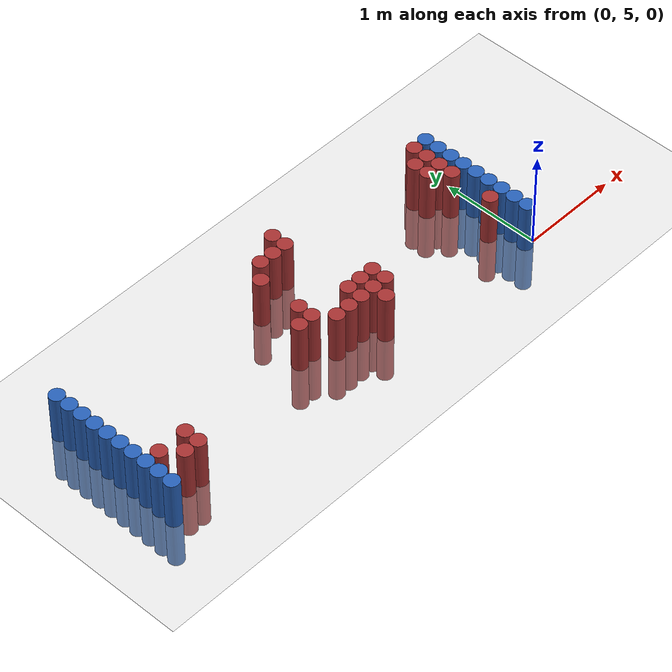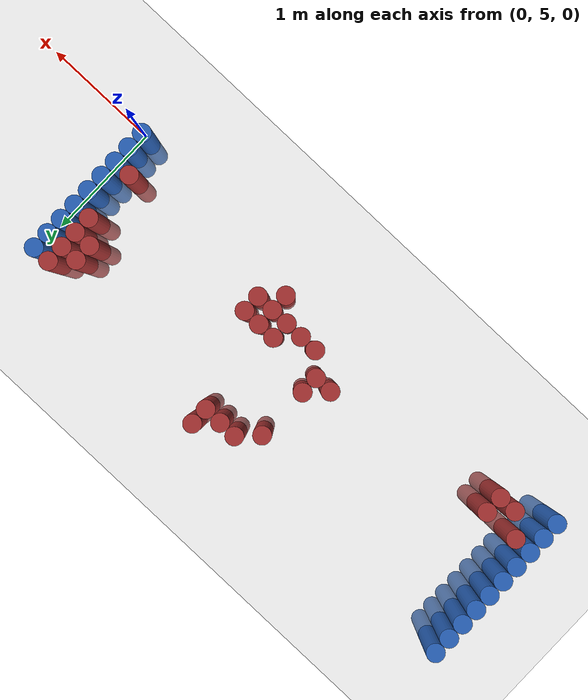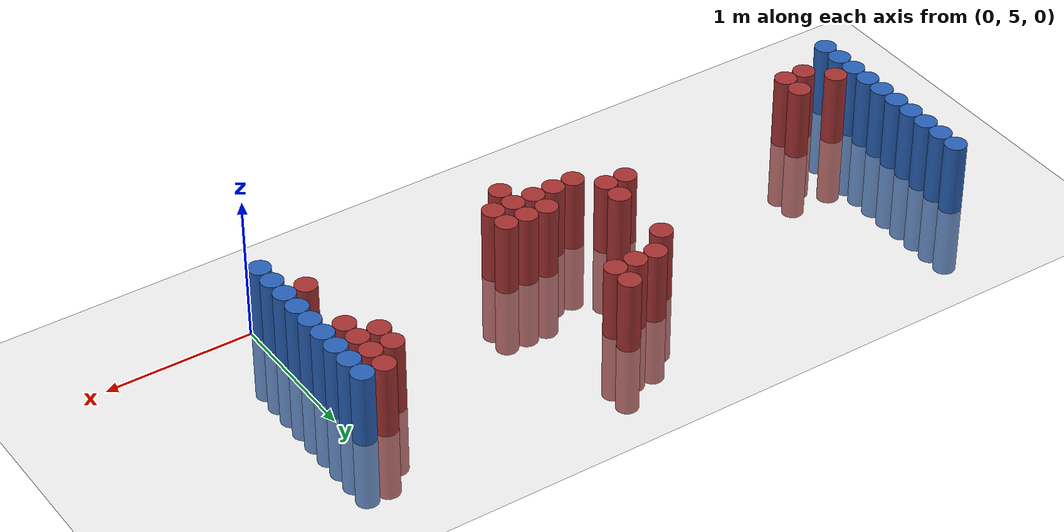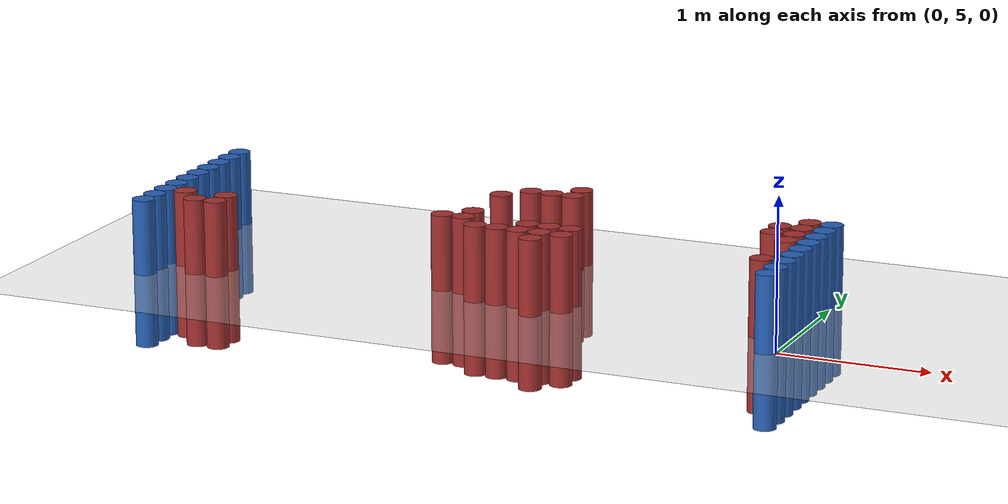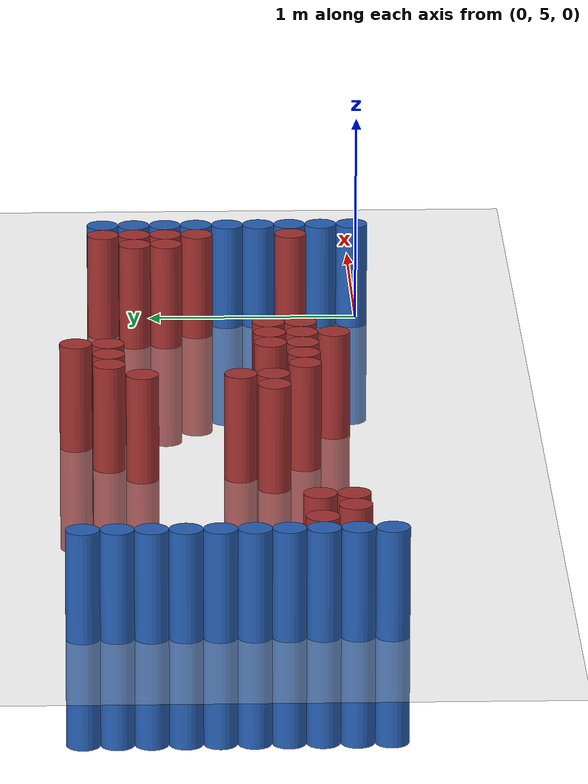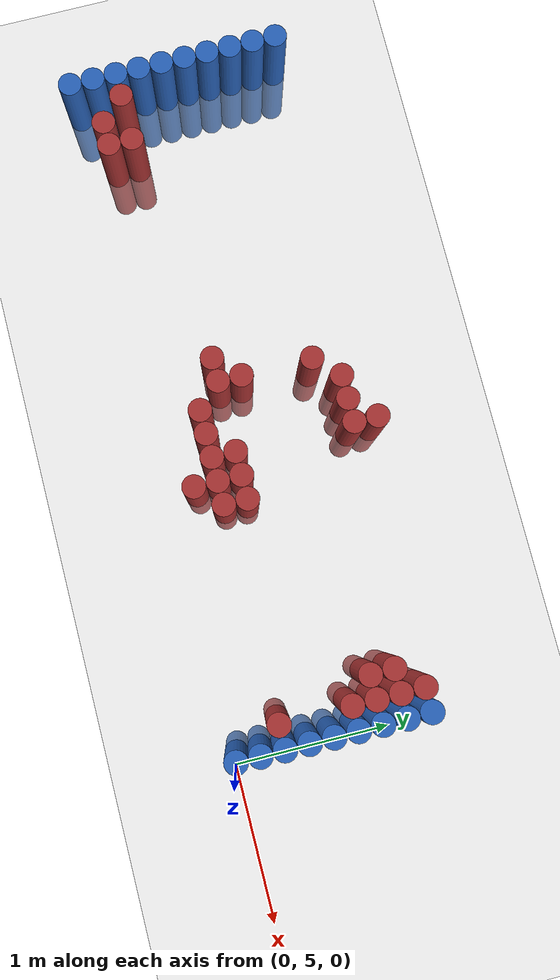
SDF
<sdf version="1.6">
 <world name="default">
  <model name="ground_plane">
   <static>1</static>
   <link name="link">
    <collision name="collision">
     <geometry><plane><normal>0 0 1</normal><size>100 100</size></plane></geometry>
     <surface><friction><ode><mu>100</mu><mu2>50</mu2></ode></friction></surface>
    </collision>
    <visual name="visual">
     <cast_shadows>0</cast_shadows>
     <geometry><plane><normal>0 0 1</normal><size>100 100</size></plane></geometry>
     <material>
      <script><uri>file://media/materials/scripts/gazebo.material</uri><name>Gazebo/Grey</name></script>
     </material>
    </visual>
   </link>
  </model>
  <model name="unit_cylinder_94">
   <static>1</static>
   <pose>-0.075000 5.025000 0.000000 0.000000 0.000000 0.000000</pose>
   <link name="link">
    <inertial>
     <mass>1</mass>
     <inertia><ixx>0.145833</ixx><ixy>0</ixy><ixz>0</ixz><iyy>0.145833</iyy><iyz>0</iyz><izz>0.125</izz></inertia>
    </inertial>
    <collision name="collision">
     <geometry><cylinder><radius>0.075000</radius><length>1</length></cylinder></geometry>
    </collision>
    <visual name="visual">
     <geometry><cylinder><radius>0.075000</radius><length>1</length></cylinder></geometry>
     <material>
      <ambient>0.152000 0.379000 0.720000 1</ambient>
      <diffuse>0.152000 0.379000 0.720000 1</diffuse>
     </material>
     <material>
      <script><name>Gazebo/Grey</name><uri>file://media/materials/scripts/gazebo.material</uri></script>
     </material>
    </visual>
   </link>
  </model>
  <model name="unit_cylinder_95">
   <static>1</static>
   <pose>-4.425000 5.025000 0.000000 0.000000 0.000000 0.000000</pose>
   <link name="link">
    <inertial>
     <mass>1</mass>
     <inertia><ixx>0.145833</ixx><ixy>0</ixy><ixz>0</ixz><iyy>0.145833</iyy><iyz>0</iyz><izz>0.125</izz></inertia>
    </inertial>
    <collision name="collision">
     <geometry><cylinder><radius>0.075000</radius><length>1</length></cylinder></geometry>
    </collision>
    <visual name="visual">
     <geometry><cylinder><radius>0.075000</radius><length>1</length></cylinder></geometry>
     <material>
      <ambient>0.152000 0.379000 0.720000 1</ambient>
      <diffuse>0.152000 0.379000 0.720000 1</diffuse>
     </material>
     <material>
      <script><name>Gazebo/Grey</name><uri>file://media/materials/scripts/gazebo.material</uri></script>
     </material>
    </visual>
   </link>
  </model>
  <model name="unit_cylinder_96">
   <static>1</static>
   <pose>-4.425000 5.175000 0.000000 0.000000 0.000000 0.000000</pose>
   <link name="link">
    <inertial>
     <mass>1</mass>
     <inertia><ixx>0.145833</ixx><ixy>0</ixy><ixz>0</ixz><iyy>0.145833</iyy><iyz>0</iyz><izz>0.125</izz></inertia>
    </inertial>
    <collision name="collision">
     <geometry><cylinder><radius>0.075000</radius><length>1</length></cylinder></geometry>
    </collision>
    <visual name="visual">
     <geometry><cylinder><radius>0.075000</radius><length>1</length></cylinder></geometry>
     <material>
      <ambient>0.152000 0.379000 0.720000 1</ambient>
      <diffuse>0.152000 0.379000 0.720000 1</diffuse>
     </material>
     <material>
      <script><name>Gazebo/Grey</name><uri>file://media/materials/scripts/gazebo.material</uri></script>
     </material>
    </visual>
   </link>
  </model>
  <model name="unit_cylinder_97">
   <static>1</static>
   <pose>-4.425000 5.325000 0.000000 0.000000 0.000000 0.000000</pose>
   <link name="link">
    <inertial>
     <mass>1</mass>
     <inertia><ixx>0.145833</ixx><ixy>0</ixy><ixz>0</ixz><iyy>0.145833</iyy><iyz>0</iyz><izz>0.125</izz></inertia>
    </inertial>
    <collision name="collision">
     <geometry><cylinder><radius>0.075000</radius><length>1</length></cylinder></geometry>
    </collision>
    <visual name="visual">
     <geometry><cylinder><radius>0.075000</radius><length>1</length></cylinder></geometry>
     <material>
      <ambient>0.152000 0.379000 0.720000 1</ambient>
      <diffuse>0.152000 0.379000 0.720000 1</diffuse>
     </material>
     <material>
      <script><name>Gazebo/Grey</name><uri>file://media/materials/scripts/gazebo.material</uri></script>
     </material>
    </visual>
   </link>
  </model>
  <model name="unit_cylinder_98">
   <static>1</static>
   <pose>-4.425000 5.475000 0.000000 0.000000 0.000000 0.000000</pose>
   <link name="link">
    <inertial>
     <mass>1</mass>
     <inertia><ixx>0.145833</ixx><ixy>0</ixy><ixz>0</ixz><iyy>0.145833</iyy><iyz>0</iyz><izz>0.125</izz></inertia>
    </inertial>
    <collision name="collision">
     <geometry><cylinder><radius>0.075000</radius><length>1</length></cylinder></geometry>
    </collision>
    <visual name="visual">
     <geometry><cylinder><radius>0.075000</radius><length>1</length></cylinder></geometry>
     <material>
      <ambient>0.152000 0.379000 0.720000 1</ambient>
      <diffuse>0.152000 0.379000 0.720000 1</diffuse>
     </material>
     <material>
      <script><name>Gazebo/Grey</name><uri>file://media/materials/scripts/gazebo.material</uri></script>
     </material>
    </visual>
   </link>
  </model>
  <model name="unit_cylinder_99">
   <static>1</static>
   <pose>-4.425000 5.625000 0.000000 0.000000 0.000000 0.000000</pose>
   <link name="link">
    <inertial>
     <mass>1</mass>
     <inertia><ixx>0.145833</ixx><ixy>0</ixy><ixz>0</ixz><iyy>0.145833</iyy><iyz>0</iyz><izz>0.125</izz></inertia>
    </inertial>
    <collision name="collision">
     <geometry><cylinder><radius>0.075000</radius><length>1</length></cylinder></geometry>
    </collision>
    <visual name="visual">
     <geometry><cylinder><radius>0.075000</radius><length>1</length></cylinder></geometry>
     <material>
      <ambient>0.152000 0.379000 0.720000 1</ambient>
      <diffuse>0.152000 0.379000 0.720000 1</diffuse>
     </material>
     <material>
      <script><name>Gazebo/Grey</name><uri>file://media/materials/scripts/gazebo.material</uri></script>
     </material>
    </visual>
   </link>
  </model>
  <model name="unit_cylinder_100">
   <static>1</static>
   <pose>-4.425000 5.775000 0.000000 0.000000 0.000000 0.000000</pose>
   <link name="link">
    <inertial>
     <mass>1</mass>
     <inertia><ixx>0.145833</ixx><ixy>0</ixy><ixz>0</ixz><iyy>0.145833</iyy><iyz>0</iyz><izz>0.125</izz></inertia>
    </inertial>
    <collision name="collision">
     <geometry><cylinder><radius>0.075000</radius><length>1</length></cylinder></geometry>
    </collision>
    <visual name="visual">
     <geometry><cylinder><radius>0.075000</radius><length>1</length></cylinder></geometry>
     <material>
      <ambient>0.152000 0.379000 0.720000 1</ambient>
      <diffuse>0.152000 0.379000 0.720000 1</diffuse>
     </material>
     <material>
      <script><name>Gazebo/Grey</name><uri>file://media/materials/scripts/gazebo.material</uri></script>
     </material>
    </visual>
   </link>
  </model>
  <model name="unit_cylinder_101">
   <static>1</static>
   <pose>-4.425000 5.925000 0.000000 0.000000 0.000000 0.000000</pose>
   <link name="link">
    <inertial>
     <mass>1</mass>
     <inertia><ixx>0.145833</ixx><ixy>0</ixy><ixz>0</ixz><iyy>0.145833</iyy><iyz>0</iyz><izz>0.125</izz></inertia>
    </inertial>
    <collision name="collision">
     <geometry><cylinder><radius>0.075000</radius><length>1</length></cylinder></geometry>
    </collision>
    <visual name="visual">
     <geometry><cylinder><radius>0.075000</radius><length>1</length></cylinder></geometry>
     <material>
      <ambient>0.152000 0.379000 0.720000 1</ambient>
      <diffuse>0.152000 0.379000 0.720000 1</diffuse>
     </material>
     <material>
      <script><name>Gazebo/Grey</name><uri>file://media/materials/scripts/gazebo.material</uri></script>
     </material>
    </visual>
   </link>
  </model>
  <model name="unit_cylinder_102">
   <static>1</static>
   <pose>-4.425000 6.075000 0.000000 0.000000 0.000000 0.000000</pose>
   <link name="link">
    <inertial>
     <mass>1</mass>
     <inertia><ixx>0.145833</ixx><ixy>0</ixy><ixz>0</ixz><iyy>0.145833</iyy><iyz>0</iyz><izz>0.125</izz></inertia>
    </inertial>
    <collision name="collision">
     <geometry><cylinder><radius>0.075000</radius><length>1</length></cylinder></geometry>
    </collision>
    <visual name="visual">
     <geometry><cylinder><radius>0.075000</radius><length>1</length></cylinder></geometry>
     <material>
      <ambient>0.152000 0.379000 0.720000 1</ambient>
      <diffuse>0.152000 0.379000 0.720000 1</diffuse>
     </material>
     <material>
      <script><name>Gazebo/Grey</name><uri>file://media/materials/scripts/gazebo.material</uri></script>
     </material>
    </visual>
   </link>
  </model>
  <model name="unit_cylinder_103">
   <static>1</static>
   <pose>-4.425000 6.225000 0.000000 0.000000 0.000000 0.000000</pose>
   <link name="link">
    <inertial>
     <mass>1</mass>
     <inertia><ixx>0.145833</ixx><ixy>0</ixy><ixz>0</ixz><iyy>0.145833</iyy><iyz>0</iyz><izz>0.125</izz></inertia>
    </inertial>
    <collision name="collision">
     <geometry><cylinder><radius>0.075000</radius><length>1</length></cylinder></geometry>
    </collision>
    <visual name="visual">
     <geometry><cylinder><radius>0.075000</radius><length>1</length></cylinder></geometry>
     <material>
      <ambient>0.152000 0.379000 0.720000 1</ambient>
      <diffuse>0.152000 0.379000 0.720000 1</diffuse>
     </material>
     <material>
      <script><name>Gazebo/Grey</name><uri>file://media/materials/scripts/gazebo.material</uri></script>
     </material>
    </visual>
   </link>
  </model>
  <model name="unit_cylinder_104">
   <static>1</static>
   <pose>-4.425000 6.375000 0.000000 0.000000 0.000000 0.000000</pose>
   <link name="link">
    <inertial>
     <mass>1</mass>
     <inertia><ixx>0.145833</ixx><ixy>0</ixy><ixz>0</ixz><iyy>0.145833</iyy><iyz>0</iyz><izz>0.125</izz></inertia>
    </inertial>
    <collision name="collision">
     <geometry><cylinder><radius>0.075000</radius><length>1</length></cylinder></geometry>
    </collision>
    <visual name="visual">
     <geometry><cylinder><radius>0.075000</radius><length>1</length></cylinder></geometry>
     <material>
      <ambient>0.152000 0.379000 0.720000 1</ambient>
      <diffuse>0.152000 0.379000 0.720000 1</diffuse>
     </material>
     <material>
      <script><name>Gazebo/Grey</name><uri>file://media/materials/scripts/gazebo.material</uri></script>
     </material>
    </visual>
   </link>
  </model>
  <model name="unit_cylinder_126">
   <static>1</static>
   <pose>-4.275000 5.325000 0.000000 0.000000 0.000000 0.000000</pose>
   <link name="link">
    <inertial>
     <mass>1</mass>
     <inertia><ixx>0.145833</ixx><ixy>0</ixy><ixz>0</ixz><iyy>0.145833</iyy><iyz>0</iyz><izz>0.125</izz></inertia>
    </inertial>
    <collision name="collision">
     <geometry><cylinder><radius>0.075000</radius><length>1</length></cylinder></geometry>
    </collision>
    <visual name="visual">
     <geometry><cylinder><radius>0.075000</radius><length>1</length></cylinder></geometry>
     <material>
      <ambient>0.648000 0.192000 0.192000 1</ambient>
      <diffuse>0.648000 0.192000 0.192000 1</diffuse>
     </material>
     <material>
      <script><name>Gazebo/Grey</name><uri>file://media/materials/scripts/gazebo.material</uri></script>
     </material>
    </visual>
   </link>
  </model>
  <model name="unit_cylinder_135">
   <static>1</static>
   <pose>-4.125000 5.175000 0.000000 0.000000 0.000000 0.000000</pose>
   <link name="link">
    <inertial>
     <mass>1</mass>
     <inertia><ixx>0.145833</ixx><ixy>0</ixy><ixz>0</ixz><iyy>0.145833</iyy><iyz>0</iyz><izz>0.125</izz></inertia>
    </inertial>
    <collision name="collision">
     <geometry><cylinder><radius>0.075000</radius><length>1</length></cylinder></geometry>
    </collision>
    <visual name="visual">
     <geometry><cylinder><radius>0.075000</radius><length>1</length></cylinder></geometry>
     <material>
      <ambient>0.648000 0.192000 0.192000 1</ambient>
      <diffuse>0.648000 0.192000 0.192000 1</diffuse>
     </material>
     <material>
      <script><name>Gazebo/Grey</name><uri>file://media/materials/scripts/gazebo.material</uri></script>
     </material>
    </visual>
   </link>
  </model>
  <model name="unit_cylinder_138">
   <static>1</static>
   <pose>-3.975000 5.175000 0.000000 0.000000 0.000000 0.000000</pose>
   <link name="link">
    <inertial>
     <mass>1</mass>
     <inertia><ixx>0.145833</ixx><ixy>0</ixy><ixz>0</ixz><iyy>0.145833</iyy><iyz>0</iyz><izz>0.125</izz></inertia>
    </inertial>
    <collision name="collision">
     <geometry><cylinder><radius>0.075000</radius><length>1</length></cylinder></geometry>
    </collision>
    <visual name="visual">
     <geometry><cylinder><radius>0.075000</radius><length>1</length></cylinder></geometry>
     <material>
      <ambient>0.648000 0.192000 0.192000 1</ambient>
      <diffuse>0.648000 0.192000 0.192000 1</diffuse>
     </material>
     <material>
      <script><name>Gazebo/Grey</name><uri>file://media/materials/scripts/gazebo.material</uri></script>
     </material>
    </visual>
   </link>
  </model>
  <model name="unit_cylinder_139">
   <static>1</static>
   <pose>-3.975000 5.325000 0.000000 0.000000 0.000000 0.000000</pose>
   <link name="link">
    <inertial>
     <mass>1</mass>
     <inertia><ixx>0.145833</ixx><ixy>0</ixy><ixz>0</ixz><iyy>0.145833</iyy><iyz>0</iyz><izz>0.125</izz></inertia>
    </inertial>
    <collision name="collision">
     <geometry><cylinder><radius>0.075000</radius><length>1</length></cylinder></geometry>
    </collision>
    <visual name="visual">
     <geometry><cylinder><radius>0.075000</radius><length>1</length></cylinder></geometry>
     <material>
      <ambient>0.648000 0.192000 0.192000 1</ambient>
      <diffuse>0.648000 0.192000 0.192000 1</diffuse>
     </material>
     <material>
      <script><name>Gazebo/Grey</name><uri>file://media/materials/scripts/gazebo.material</uri></script>
     </material>
    </visual>
   </link>
  </model>
  <model name="unit_cylinder_150">
   <static>1</static>
   <pose>-2.475000 5.475000 0.000000 0.000000 0.000000 0.000000</pose>
   <link name="link">
    <inertial>
     <mass>1</mass>
     <inertia><ixx>0.145833</ixx><ixy>0</ixy><ixz>0</ixz><iyy>0.145833</iyy><iyz>0</iyz><izz>0.125</izz></inertia>
    </inertial>
    <collision name="collision">
     <geometry><cylinder><radius>0.075000</radius><length>1</length></cylinder></geometry>
    </collision>
    <visual name="visual">
     <geometry><cylinder><radius>0.075000</radius><length>1</length></cylinder></geometry>
     <material>
      <ambient>0.648000 0.192000 0.192000 1</ambient>
      <diffuse>0.648000 0.192000 0.192000 1</diffuse>
     </material>
     <material>
      <script><name>Gazebo/Grey</name><uri>file://media/materials/scripts/gazebo.material</uri></script>
     </material>
    </visual>
   </link>
  </model>
  <model name="unit_cylinder_151">
   <static>1</static>
   <pose>-2.325000 5.475000 0.000000 0.000000 0.000000 0.000000</pose>
   <link name="link">
    <inertial>
     <mass>1</mass>
     <inertia><ixx>0.145833</ixx><ixy>0</ixy><ixz>0</ixz><iyy>0.145833</iyy><iyz>0</iyz><izz>0.125</izz></inertia>
    </inertial>
    <collision name="collision">
     <geometry><cylinder><radius>0.075000</radius><length>1</length></cylinder></geometry>
    </collision>
    <visual name="visual">
     <geometry><cylinder><radius>0.075000</radius><length>1</length></cylinder></geometry>
     <material>
      <ambient>0.648000 0.192000 0.192000 1</ambient>
      <diffuse>0.648000 0.192000 0.192000 1</diffuse>
     </material>
     <material>
      <script><name>Gazebo/Grey</name><uri>file://media/materials/scripts/gazebo.material</uri></script>
     </material>
    </visual>
   </link>
  </model>
  <model name="unit_cylinder_152">
   <static>1</static>
   <pose>-2.325000 5.625000 0.000000 0.000000 0.000000 0.000000</pose>
   <link name="link">
    <inertial>
     <mass>1</mass>
     <inertia><ixx>0.145833</ixx><ixy>0</ixy><ixz>0</ixz><iyy>0.145833</iyy><iyz>0</iyz><izz>0.125</izz></inertia>
    </inertial>
    <collision name="collision">
     <geometry><cylinder><radius>0.075000</radius><length>1</length></cylinder></geometry>
    </collision>
    <visual name="visual">
     <geometry><cylinder><radius>0.075000</radius><length>1</length></cylinder></geometry>
     <material>
      <ambient>0.648000 0.192000 0.192000 1</ambient>
      <diffuse>0.648000 0.192000 0.192000 1</diffuse>
     </material>
     <material>
      <script><name>Gazebo/Grey</name><uri>file://media/materials/scripts/gazebo.material</uri></script>
     </material>
    </visual>
   </link>
  </model>
  <model name="unit_cylinder_153">
   <static>1</static>
   <pose>-2.325000 6.075000 0.000000 0.000000 0.000000 0.000000</pose>
   <link name="link">
    <inertial>
     <mass>1</mass>
     <inertia><ixx>0.145833</ixx><ixy>0</ixy><ixz>0</ixz><iyy>0.145833</iyy><iyz>0</iyz><izz>0.125</izz></inertia>
    </inertial>
    <collision name="collision">
     <geometry><cylinder><radius>0.075000</radius><length>1</length></cylinder></geometry>
    </collision>
    <visual name="visual">
     <geometry><cylinder><radius>0.075000</radius><length>1</length></cylinder></geometry>
     <material>
      <ambient>0.648000 0.192000 0.192000 1</ambient>
      <diffuse>0.648000 0.192000 0.192000 1</diffuse>
     </material>
     <material>
      <script><name>Gazebo/Grey</name><uri>file://media/materials/scripts/gazebo.material</uri></script>
     </material>
    </visual>
   </link>
  </model>
  <model name="unit_cylinder_155">
   <static>1</static>
   <pose>-2.175000 5.325000 0.000000 0.000000 0.000000 0.000000</pose>
   <link name="link">
    <inertial>
     <mass>1</mass>
     <inertia><ixx>0.145833</ixx><ixy>0</ixy><ixz>0</ixz><iyy>0.145833</iyy><iyz>0</iyz><izz>0.125</izz></inertia>
    </inertial>
    <collision name="collision">
     <geometry><cylinder><radius>0.075000</radius><length>1</length></cylinder></geometry>
    </collision>
    <visual name="visual">
     <geometry><cylinder><radius>0.075000</radius><length>1</length></cylinder></geometry>
     <material>
      <ambient>0.648000 0.192000 0.192000 1</ambient>
      <diffuse>0.648000 0.192000 0.192000 1</diffuse>
     </material>
     <material>
      <script><name>Gazebo/Grey</name><uri>file://media/materials/scripts/gazebo.material</uri></script>
     </material>
    </visual>
   </link>
  </model>
  <model name="unit_cylinder_156">
   <static>1</static>
   <pose>-2.175000 6.225000 0.000000 0.000000 0.000000 0.000000</pose>
   <link name="link">
    <inertial>
     <mass>1</mass>
     <inertia><ixx>0.145833</ixx><ixy>0</ixy><ixz>0</ixz><iyy>0.145833</iyy><iyz>0</iyz><izz>0.125</izz></inertia>
    </inertial>
    <collision name="collision">
     <geometry><cylinder><radius>0.075000</radius><length>1</length></cylinder></geometry>
    </collision>
    <visual name="visual">
     <geometry><cylinder><radius>0.075000</radius><length>1</length></cylinder></geometry>
     <material>
      <ambient>0.648000 0.192000 0.192000 1</ambient>
      <diffuse>0.648000 0.192000 0.192000 1</diffuse>
     </material>
     <material>
      <script><name>Gazebo/Grey</name><uri>file://media/materials/scripts/gazebo.material</uri></script>
     </material>
    </visual>
   </link>
  </model>
  <model name="unit_cylinder_160">
   <static>1</static>
   <pose>-2.025000 5.325000 0.000000 0.000000 0.000000 0.000000</pose>
   <link name="link">
    <inertial>
     <mass>1</mass>
     <inertia><ixx>0.145833</ixx><ixy>0</ixy><ixz>0</ixz><iyy>0.145833</iyy><iyz>0</iyz><izz>0.125</izz></inertia>
    </inertial>
    <collision name="collision">
     <geometry><cylinder><radius>0.075000</radius><length>1</length></cylinder></geometry>
    </collision>
    <visual name="visual">
     <geometry><cylinder><radius>0.075000</radius><length>1</length></cylinder></geometry>
     <material>
      <ambient>0.648000 0.192000 0.192000 1</ambient>
      <diffuse>0.648000 0.192000 0.192000 1</diffuse>
     </material>
     <material>
      <script><name>Gazebo/Grey</name><uri>file://media/materials/scripts/gazebo.material</uri></script>
     </material>
    </visual>
   </link>
  </model>
  <model name="unit_cylinder_161">
   <static>1</static>
   <pose>-2.025000 6.225000 0.000000 0.000000 0.000000 0.000000</pose>
   <link name="link">
    <inertial>
     <mass>1</mass>
     <inertia><ixx>0.145833</ixx><ixy>0</ixy><ixz>0</ixz><iyy>0.145833</iyy><iyz>0</iyz><izz>0.125</izz></inertia>
    </inertial>
    <collision name="collision">
     <geometry><cylinder><radius>0.075000</radius><length>1</length></cylinder></geometry>
    </collision>
    <visual name="visual">
     <geometry><cylinder><radius>0.075000</radius><length>1</length></cylinder></geometry>
     <material>
      <ambient>0.648000 0.192000 0.192000 1</ambient>
      <diffuse>0.648000 0.192000 0.192000 1</diffuse>
     </material>
     <material>
      <script><name>Gazebo/Grey</name><uri>file://media/materials/scripts/gazebo.material</uri></script>
     </material>
    </visual>
   </link>
  </model>
  <model name="unit_cylinder_162">
   <static>1</static>
   <pose>-1.875000 5.325000 0.000000 0.000000 0.000000 0.000000</pose>
   <link name="link">
    <inertial>
     <mass>1</mass>
     <inertia><ixx>0.145833</ixx><ixy>0</ixy><ixz>0</ixz><iyy>0.145833</iyy><iyz>0</iyz><izz>0.125</izz></inertia>
    </inertial>
    <collision name="collision">
     <geometry><cylinder><radius>0.075000</radius><length>1</length></cylinder></geometry>
    </collision>
    <visual name="visual">
     <geometry><cylinder><radius>0.075000</radius><length>1</length></cylinder></geometry>
     <material>
      <ambient>0.648000 0.192000 0.192000 1</ambient>
      <diffuse>0.648000 0.192000 0.192000 1</diffuse>
     </material>
     <material>
      <script><name>Gazebo/Grey</name><uri>file://media/materials/scripts/gazebo.material</uri></script>
     </material>
    </visual>
   </link>
  </model>
  <model name="unit_cylinder_163">
   <static>1</static>
   <pose>-1.875000 5.475000 0.000000 0.000000 0.000000 0.000000</pose>
   <link name="link">
    <inertial>
     <mass>1</mass>
     <inertia><ixx>0.145833</ixx><ixy>0</ixy><ixz>0</ixz><iyy>0.145833</iyy><iyz>0</iyz><izz>0.125</izz></inertia>
    </inertial>
    <collision name="collision">
     <geometry><cylinder><radius>0.075000</radius><length>1</length></cylinder></geometry>
    </collision>
    <visual name="visual">
     <geometry><cylinder><radius>0.075000</radius><length>1</length></cylinder></geometry>
     <material>
      <ambient>0.648000 0.192000 0.192000 1</ambient>
      <diffuse>0.648000 0.192000 0.192000 1</diffuse>
     </material>
     <material>
      <script><name>Gazebo/Grey</name><uri>file://media/materials/scripts/gazebo.material</uri></script>
     </material>
    </visual>
   </link>
  </model>
  <model name="unit_cylinder_164">
   <static>1</static>
   <pose>-1.875000 6.225000 0.000000 0.000000 0.000000 0.000000</pose>
   <link name="link">
    <inertial>
     <mass>1</mass>
     <inertia><ixx>0.145833</ixx><ixy>0</ixy><ixz>0</ixz><iyy>0.145833</iyy><iyz>0</iyz><izz>0.125</izz></inertia>
    </inertial>
    <collision name="collision">
     <geometry><cylinder><radius>0.075000</radius><length>1</length></cylinder></geometry>
    </collision>
    <visual name="visual">
     <geometry><cylinder><radius>0.075000</radius><length>1</length></cylinder></geometry>
     <material>
      <ambient>0.648000 0.192000 0.192000 1</ambient>
      <diffuse>0.648000 0.192000 0.192000 1</diffuse>
     </material>
     <material>
      <script><name>Gazebo/Grey</name><uri>file://media/materials/scripts/gazebo.material</uri></script>
     </material>
    </visual>
   </link>
  </model>
  <model name="unit_cylinder_165">
   <static>1</static>
   <pose>-1.875000 6.375000 0.000000 0.000000 0.000000 0.000000</pose>
   <link name="link">
    <inertial>
     <mass>1</mass>
     <inertia><ixx>0.145833</ixx><ixy>0</ixy><ixz>0</ixz><iyy>0.145833</iyy><iyz>0</iyz><izz>0.125</izz></inertia>
    </inertial>
    <collision name="collision">
     <geometry><cylinder><radius>0.075000</radius><length>1</length></cylinder></geometry>
    </collision>
    <visual name="visual">
     <geometry><cylinder><radius>0.075000</radius><length>1</length></cylinder></geometry>
     <material>
      <ambient>0.648000 0.192000 0.192000 1</ambient>
      <diffuse>0.648000 0.192000 0.192000 1</diffuse>
     </material>
     <material>
      <script><name>Gazebo/Grey</name><uri>file://media/materials/scripts/gazebo.material</uri></script>
     </material>
    </visual>
   </link>
  </model>
  <model name="unit_cylinder_166">
   <static>1</static>
   <pose>-1.725000 5.175000 0.000000 0.000000 0.000000 0.000000</pose>
   <link name="link">
    <inertial>
     <mass>1</mass>
     <inertia><ixx>0.145833</ixx><ixy>0</ixy><ixz>0</ixz><iyy>0.145833</iyy><iyz>0</iyz><izz>0.125</izz></inertia>
    </inertial>
    <collision name="collision">
     <geometry><cylinder><radius>0.075000</radius><length>1</length></cylinder></geometry>
    </collision>
    <visual name="visual">
     <geometry><cylinder><radius>0.075000</radius><length>1</length></cylinder></geometry>
     <material>
      <ambient>0.648000 0.192000 0.192000 1</ambient>
      <diffuse>0.648000 0.192000 0.192000 1</diffuse>
     </material>
     <material>
      <script><name>Gazebo/Grey</name><uri>file://media/materials/scripts/gazebo.material</uri></script>
     </material>
    </visual>
   </link>
  </model>
  <model name="unit_cylinder_167">
   <static>1</static>
   <pose>-1.725000 5.325000 0.000000 0.000000 0.000000 0.000000</pose>
   <link name="link">
    <inertial>
     <mass>1</mass>
     <inertia><ixx>0.145833</ixx><ixy>0</ixy><ixz>0</ixz><iyy>0.145833</iyy><iyz>0</iyz><izz>0.125</izz></inertia>
    </inertial>
    <collision name="collision">
     <geometry><cylinder><radius>0.075000</radius><length>1</length></cylinder></geometry>
    </collision>
    <visual name="visual">
     <geometry><cylinder><radius>0.075000</radius><length>1</length></cylinder></geometry>
     <material>
      <ambient>0.648000 0.192000 0.192000 1</ambient>
      <diffuse>0.648000 0.192000 0.192000 1</diffuse>
     </material>
     <material>
      <script><name>Gazebo/Grey</name><uri>file://media/materials/scripts/gazebo.material</uri></script>
     </material>
    </visual>
   </link>
  </model>
  <model name="unit_cylinder_168">
   <static>1</static>
   <pose>-1.725000 5.475000 0.000000 0.000000 0.000000 0.000000</pose>
   <link name="link">
    <inertial>
     <mass>1</mass>
     <inertia><ixx>0.145833</ixx><ixy>0</ixy><ixz>0</ixz><iyy>0.145833</iyy><iyz>0</iyz><izz>0.125</izz></inertia>
    </inertial>
    <collision name="collision">
     <geometry><cylinder><radius>0.075000</radius><length>1</length></cylinder></geometry>
    </collision>
    <visual name="visual">
     <geometry><cylinder><radius>0.075000</radius><length>1</length></cylinder></geometry>
     <material>
      <ambient>0.648000 0.192000 0.192000 1</ambient>
      <diffuse>0.648000 0.192000 0.192000 1</diffuse>
     </material>
     <material>
      <script><name>Gazebo/Grey</name><uri>file://media/materials/scripts/gazebo.material</uri></script>
     </material>
    </visual>
   </link>
  </model>
  <model name="unit_cylinder_169">
   <static>1</static>
   <pose>-1.575000 5.325000 0.000000 0.000000 0.000000 0.000000</pose>
   <link name="link">
    <inertial>
     <mass>1</mass>
     <inertia><ixx>0.145833</ixx><ixy>0</ixy><ixz>0</ixz><iyy>0.145833</iyy><iyz>0</iyz><izz>0.125</izz></inertia>
    </inertial>
    <collision name="collision">
     <geometry><cylinder><radius>0.075000</radius><length>1</length></cylinder></geometry>
    </collision>
    <visual name="visual">
     <geometry><cylinder><radius>0.075000</radius><length>1</length></cylinder></geometry>
     <material>
      <ambient>0.648000 0.192000 0.192000 1</ambient>
      <diffuse>0.648000 0.192000 0.192000 1</diffuse>
     </material>
     <material>
      <script><name>Gazebo/Grey</name><uri>file://media/materials/scripts/gazebo.material</uri></script>
     </material>
    </visual>
   </link>
  </model>
  <model name="unit_cylinder_170">
   <static>1</static>
   <pose>-1.575000 5.475000 0.000000 0.000000 0.000000 0.000000</pose>
   <link name="link">
    <inertial>
     <mass>1</mass>
     <inertia><ixx>0.145833</ixx><ixy>0</ixy><ixz>0</ixz><iyy>0.145833</iyy><iyz>0</iyz><izz>0.125</izz></inertia>
    </inertial>
    <collision name="collision">
     <geometry><cylinder><radius>0.075000</radius><length>1</length></cylinder></geometry>
    </collision>
    <visual name="visual">
     <geometry><cylinder><radius>0.075000</radius><length>1</length></cylinder></geometry>
     <material>
      <ambient>0.648000 0.192000 0.192000 1</ambient>
      <diffuse>0.648000 0.192000 0.192000 1</diffuse>
     </material>
     <material>
      <script><name>Gazebo/Grey</name><uri>file://media/materials/scripts/gazebo.material</uri></script>
     </material>
    </visual>
   </link>
  </model>
  <model name="unit_cylinder_185">
   <static>1</static>
   <pose>-0.375000 5.925000 0.000000 0.000000 0.000000 0.000000</pose>
   <link name="link">
    <inertial>
     <mass>1</mass>
     <inertia><ixx>0.145833</ixx><ixy>0</ixy><ixz>0</ixz><iyy>0.145833</iyy><iyz>0</iyz><izz>0.125</izz></inertia>
    </inertial>
    <collision name="collision">
     <geometry><cylinder><radius>0.075000</radius><length>1</length></cylinder></geometry>
    </collision>
    <visual name="visual">
     <geometry><cylinder><radius>0.075000</radius><length>1</length></cylinder></geometry>
     <material>
      <ambient>0.648000 0.192000 0.192000 1</ambient>
      <diffuse>0.648000 0.192000 0.192000 1</diffuse>
     </material>
     <material>
      <script><name>Gazebo/Grey</name><uri>file://media/materials/scripts/gazebo.material</uri></script>
     </material>
    </visual>
   </link>
  </model>
  <model name="unit_cylinder_186">
   <static>1</static>
   <pose>-0.375000 6.075000 0.000000 0.000000 0.000000 0.000000</pose>
   <link name="link">
    <inertial>
     <mass>1</mass>
     <inertia><ixx>0.145833</ixx><ixy>0</ixy><ixz>0</ixz><iyy>0.145833</iyy><iyz>0</iyz><izz>0.125</izz></inertia>
    </inertial>
    <collision name="collision">
     <geometry><cylinder><radius>0.075000</radius><length>1</length></cylinder></geometry>
    </collision>
    <visual name="visual">
     <geometry><cylinder><radius>0.075000</radius><length>1</length></cylinder></geometry>
     <material>
      <ambient>0.648000 0.192000 0.192000 1</ambient>
      <diffuse>0.648000 0.192000 0.192000 1</diffuse>
     </material>
     <material>
      <script><name>Gazebo/Grey</name><uri>file://media/materials/scripts/gazebo.material</uri></script>
     </material>
    </visual>
   </link>
  </model>
  <model name="unit_cylinder_190">
   <static>1</static>
   <pose>-0.225000 5.325000 0.000000 0.000000 0.000000 0.000000</pose>
   <link name="link">
    <inertial>
     <mass>1</mass>
     <inertia><ixx>0.145833</ixx><ixy>0</ixy><ixz>0</ixz><iyy>0.145833</iyy><iyz>0</iyz><izz>0.125</izz></inertia>
    </inertial>
    <collision name="collision">
     <geometry><cylinder><radius>0.075000</radius><length>1</length></cylinder></geometry>
    </collision>
    <visual name="visual">
     <geometry><cylinder><radius>0.075000</radius><length>1</length></cylinder></geometry>
     <material>
      <ambient>0.648000 0.192000 0.192000 1</ambient>
      <diffuse>0.648000 0.192000 0.192000 1</diffuse>
     </material>
     <material>
      <script><name>Gazebo/Grey</name><uri>file://media/materials/scripts/gazebo.material</uri></script>
     </material>
    </visual>
   </link>
  </model>
  <model name="unit_cylinder_191">
   <static>1</static>
   <pose>-0.225000 5.775000 0.000000 0.000000 0.000000 0.000000</pose>
   <link name="link">
    <inertial>
     <mass>1</mass>
     <inertia><ixx>0.145833</ixx><ixy>0</ixy><ixz>0</ixz><iyy>0.145833</iyy><iyz>0</iyz><izz>0.125</izz></inertia>
    </inertial>
    <collision name="collision">
     <geometry><cylinder><radius>0.075000</radius><length>1</length></cylinder></geometry>
    </collision>
    <visual name="visual">
     <geometry><cylinder><radius>0.075000</radius><length>1</length></cylinder></geometry>
     <material>
      <ambient>0.648000 0.192000 0.192000 1</ambient>
      <diffuse>0.648000 0.192000 0.192000 1</diffuse>
     </material>
     <material>
      <script><name>Gazebo/Grey</name><uri>file://media/materials/scripts/gazebo.material</uri></script>
     </material>
    </visual>
   </link>
  </model>
  <model name="unit_cylinder_192">
   <static>1</static>
   <pose>-0.225000 5.925000 0.000000 0.000000 0.000000 0.000000</pose>
   <link name="link">
    <inertial>
     <mass>1</mass>
     <inertia><ixx>0.145833</ixx><ixy>0</ixy><ixz>0</ixz><iyy>0.145833</iyy><iyz>0</iyz><izz>0.125</izz></inertia>
    </inertial>
    <collision name="collision">
     <geometry><cylinder><radius>0.075000</radius><length>1</length></cylinder></geometry>
    </collision>
    <visual name="visual">
     <geometry><cylinder><radius>0.075000</radius><length>1</length></cylinder></geometry>
     <material>
      <ambient>0.648000 0.192000 0.192000 1</ambient>
      <diffuse>0.648000 0.192000 0.192000 1</diffuse>
     </material>
     <material>
      <script><name>Gazebo/Grey</name><uri>file://media/materials/scripts/gazebo.material</uri></script>
     </material>
    </visual>
   </link>
  </model>
  <model name="unit_cylinder_193">
   <static>1</static>
   <pose>-0.225000 6.075000 0.000000 0.000000 0.000000 0.000000</pose>
   <link name="link">
    <inertial>
     <mass>1</mass>
     <inertia><ixx>0.145833</ixx><ixy>0</ixy><ixz>0</ixz><iyy>0.145833</iyy><iyz>0</iyz><izz>0.125</izz></inertia>
    </inertial>
    <collision name="collision">
     <geometry><cylinder><radius>0.075000</radius><length>1</length></cylinder></geometry>
    </collision>
    <visual name="visual">
     <geometry><cylinder><radius>0.075000</radius><length>1</length></cylinder></geometry>
     <material>
      <ambient>0.648000 0.192000 0.192000 1</ambient>
      <diffuse>0.648000 0.192000 0.192000 1</diffuse>
     </material>
     <material>
      <script><name>Gazebo/Grey</name><uri>file://media/materials/scripts/gazebo.material</uri></script>
     </material>
    </visual>
   </link>
  </model>
  <model name="unit_cylinder_194">
   <static>1</static>
   <pose>-0.225000 6.225000 0.000000 0.000000 0.000000 0.000000</pose>
   <link name="link">
    <inertial>
     <mass>1</mass>
     <inertia><ixx>0.145833</ixx><ixy>0</ixy><ixz>0</ixz><iyy>0.145833</iyy><iyz>0</iyz><izz>0.125</izz></inertia>
    </inertial>
    <collision name="collision">
     <geometry><cylinder><radius>0.075000</radius><length>1</length></cylinder></geometry>
    </collision>
    <visual name="visual">
     <geometry><cylinder><radius>0.075000</radius><length>1</length></cylinder></geometry>
     <material>
      <ambient>0.648000 0.192000 0.192000 1</ambient>
      <diffuse>0.648000 0.192000 0.192000 1</diffuse>
     </material>
     <material>
      <script><name>Gazebo/Grey</name><uri>file://media/materials/scripts/gazebo.material</uri></script>
     </material>
    </visual>
   </link>
  </model>
  <model name="unit_cylinder_205">
   <static>1</static>
   <pose>-0.075000 5.175000 0.000000 0.000000 0.000000 0.000000</pose>
   <link name="link">
    <inertial>
     <mass>1</mass>
     <inertia><ixx>0.145833</ixx><ixy>0</ixy><ixz>0</ixz><iyy>0.145833</iyy><iyz>0</iyz><izz>0.125</izz></inertia>
    </inertial>
    <collision name="collision">
     <geometry><cylinder><radius>0.075000</radius><length>1</length></cylinder></geometry>
    </collision>
    <visual name="visual">
     <geometry><cylinder><radius>0.075000</radius><length>1</length></cylinder></geometry>
     <material>
      <ambient>0.152000 0.379000 0.720000 1</ambient>
      <diffuse>0.152000 0.379000 0.720000 1</diffuse>
     </material>
     <material>
      <script><name>Gazebo/Grey</name><uri>file://media/materials/scripts/gazebo.material</uri></script>
     </material>
    </visual>
   </link>
  </model>
  <model name="unit_cylinder_206">
   <static>1</static>
   <pose>-0.075000 5.325000 0.000000 0.000000 0.000000 0.000000</pose>
   <link name="link">
    <inertial>
     <mass>1</mass>
     <inertia><ixx>0.145833</ixx><ixy>0</ixy><ixz>0</ixz><iyy>0.145833</iyy><iyz>0</iyz><izz>0.125</izz></inertia>
    </inertial>
    <collision name="collision">
     <geometry><cylinder><radius>0.075000</radius><length>1</length></cylinder></geometry>
    </collision>
    <visual name="visual">
     <geometry><cylinder><radius>0.075000</radius><length>1</length></cylinder></geometry>
     <material>
      <ambient>0.152000 0.379000 0.720000 1</ambient>
      <diffuse>0.152000 0.379000 0.720000 1</diffuse>
     </material>
     <material>
      <script><name>Gazebo/Grey</name><uri>file://media/materials/scripts/gazebo.material</uri></script>
     </material>
    </visual>
   </link>
  </model>
  <model name="unit_cylinder_207">
   <static>1</static>
   <pose>-0.075000 5.475000 0.000000 0.000000 0.000000 0.000000</pose>
   <link name="link">
    <inertial>
     <mass>1</mass>
     <inertia><ixx>0.145833</ixx><ixy>0</ixy><ixz>0</ixz><iyy>0.145833</iyy><iyz>0</iyz><izz>0.125</izz></inertia>
    </inertial>
    <collision name="collision">
     <geometry><cylinder><radius>0.075000</radius><length>1</length></cylinder></geometry>
    </collision>
    <visual name="visual">
     <geometry><cylinder><radius>0.075000</radius><length>1</length></cylinder></geometry>
     <material>
      <ambient>0.152000 0.379000 0.720000 1</ambient>
      <diffuse>0.152000 0.379000 0.720000 1</diffuse>
     </material>
     <material>
      <script><name>Gazebo/Grey</name><uri>file://media/materials/scripts/gazebo.material</uri></script>
     </material>
    </visual>
   </link>
  </model>
  <model name="unit_cylinder_208">
   <static>1</static>
   <pose>-0.075000 5.625000 0.000000 0.000000 0.000000 0.000000</pose>
   <link name="link">
    <inertial>
     <mass>1</mass>
     <inertia><ixx>0.145833</ixx><ixy>0</ixy><ixz>0</ixz><iyy>0.145833</iyy><iyz>0</iyz><izz>0.125</izz></inertia>
    </inertial>
    <collision name="collision">
     <geometry><cylinder><radius>0.075000</radius><length>1</length></cylinder></geometry>
    </collision>
    <visual name="visual">
     <geometry><cylinder><radius>0.075000</radius><length>1</length></cylinder></geometry>
     <material>
      <ambient>0.152000 0.379000 0.720000 1</ambient>
      <diffuse>0.152000 0.379000 0.720000 1</diffuse>
     </material>
     <material>
      <script><name>Gazebo/Grey</name><uri>file://media/materials/scripts/gazebo.material</uri></script>
     </material>
    </visual>
   </link>
  </model>
  <model name="unit_cylinder_209">
   <static>1</static>
   <pose>-0.075000 5.775000 0.000000 0.000000 0.000000 0.000000</pose>
   <link name="link">
    <inertial>
     <mass>1</mass>
     <inertia><ixx>0.145833</ixx><ixy>0</ixy><ixz>0</ixz><iyy>0.145833</iyy><iyz>0</iyz><izz>0.125</izz></inertia>
    </inertial>
    <collision name="collision">
     <geometry><cylinder><radius>0.075000</radius><length>1</length></cylinder></geometry>
    </collision>
    <visual name="visual">
     <geometry><cylinder><radius>0.075000</radius><length>1</length></cylinder></geometry>
     <material>
      <ambient>0.152000 0.379000 0.720000 1</ambient>
      <diffuse>0.152000 0.379000 0.720000 1</diffuse>
     </material>
     <material>
      <script><name>Gazebo/Grey</name><uri>file://media/materials/scripts/gazebo.material</uri></script>
     </material>
    </visual>
   </link>
  </model>
  <model name="unit_cylinder_210">
   <static>1</static>
   <pose>-0.075000 5.925000 0.000000 0.000000 0.000000 0.000000</pose>
   <link name="link">
    <inertial>
     <mass>1</mass>
     <inertia><ixx>0.145833</ixx><ixy>0</ixy><ixz>0</ixz><iyy>0.145833</iyy><iyz>0</iyz><izz>0.125</izz></inertia>
    </inertial>
    <collision name="collision">
     <geometry><cylinder><radius>0.075000</radius><length>1</length></cylinder></geometry>
    </collision>
    <visual name="visual">
     <geometry><cylinder><radius>0.075000</radius><length>1</length></cylinder></geometry>
     <material>
      <ambient>0.152000 0.379000 0.720000 1</ambient>
      <diffuse>0.152000 0.379000 0.720000 1</diffuse>
     </material>
     <material>
      <script><name>Gazebo/Grey</name><uri>file://media/materials/scripts/gazebo.material</uri></script>
     </material>
    </visual>
   </link>
  </model>
  <model name="unit_cylinder_211">
   <static>1</static>
   <pose>-0.075000 6.075000 0.000000 0.000000 0.000000 0.000000</pose>
   <link name="link">
    <inertial>
     <mass>1</mass>
     <inertia><ixx>0.145833</ixx><ixy>0</ixy><ixz>0</ixz><iyy>0.145833</iyy><iyz>0</iyz><izz>0.125</izz></inertia>
    </inertial>
    <collision name="collision">
     <geometry><cylinder><radius>0.075000</radius><length>1</length></cylinder></geometry>
    </collision>
    <visual name="visual">
     <geometry><cylinder><radius>0.075000</radius><length>1</length></cylinder></geometry>
     <material>
      <ambient>0.152000 0.379000 0.720000 1</ambient>
      <diffuse>0.152000 0.379000 0.720000 1</diffuse>
     </material>
     <material>
      <script><name>Gazebo/Grey</name><uri>file://media/materials/scripts/gazebo.material</uri></script>
     </material>
    </visual>
   </link>
  </model>
  <model name="unit_cylinder_212">
   <static>1</static>
   <pose>-0.075000 6.225000 0.000000 0.000000 0.000000 0.000000</pose>
   <link name="link">
    <inertial>
     <mass>1</mass>
     <inertia><ixx>0.145833</ixx><ixy>0</ixy><ixz>0</ixz><iyy>0.145833</iyy><iyz>0</iyz><izz>0.125</izz></inertia>
    </inertial>
    <collision name="collision">
     <geometry><cylinder><radius>0.075000</radius><length>1</length></cylinder></geometry>
    </collision>
    <visual name="visual">
     <geometry><cylinder><radius>0.075000</radius><length>1</length></cylinder></geometry>
     <material>
      <ambient>0.152000 0.379000 0.720000 1</ambient>
      <diffuse>0.152000 0.379000 0.720000 1</diffuse>
     </material>
     <material>
      <script><name>Gazebo/Grey</name><uri>file://media/materials/scripts/gazebo.material</uri></script>
     </material>
    </visual>
   </link>
  </model>
 </world>
</sdf>
